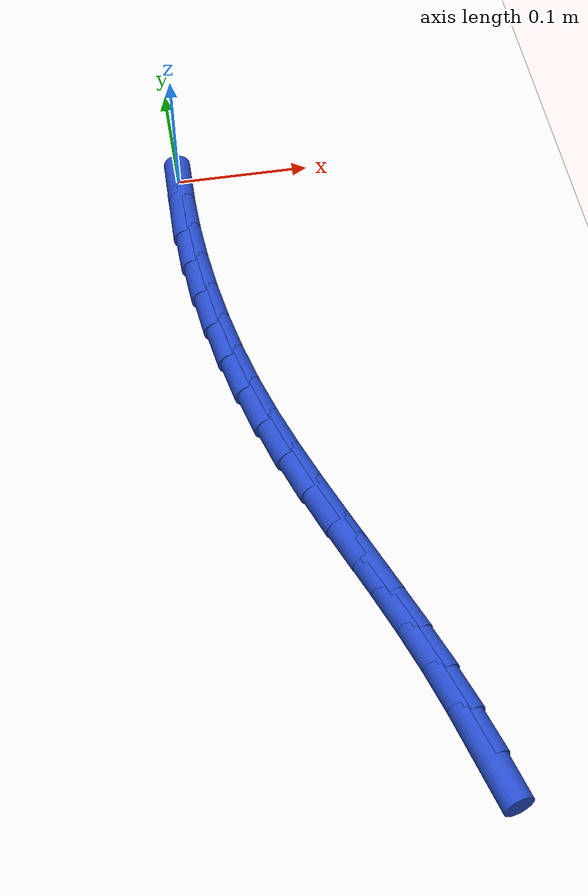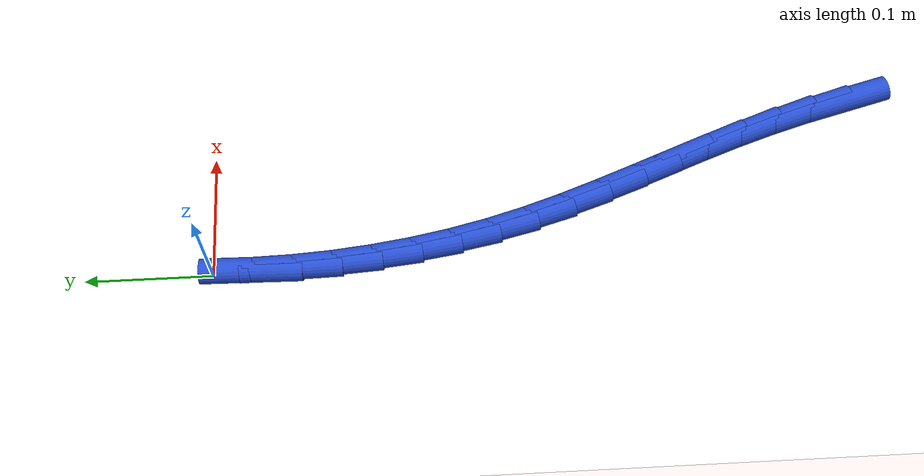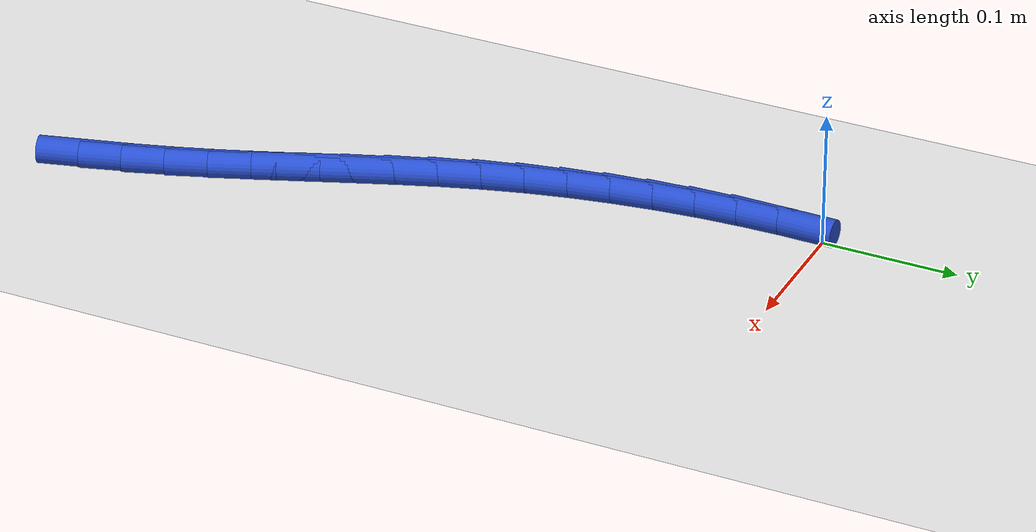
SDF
<sdf version="1.6">
 <world name="default">
  <model name="ground_plane">
   <static>1</static>
   <link name="link">
    <collision name="collision">
     <geometry><plane><normal>0 0 1</normal><size>100 100</size></plane></geometry>
     <surface><friction><ode><mu>100</mu><mu2>50</mu2></ode></friction></surface>
    </collision>
    <visual name="visual">
     <cast_shadows>0</cast_shadows>
     <geometry><plane><normal>0 0 1</normal><size>100 100</size></plane></geometry>
     <material>
      <script><uri>file://media/materials/scripts/gazebo.material</uri><name>Gazebo/WhiteGlow</name></script>
     </material>
    </visual>
   </link>
  </model>
  <model name="line">
   <link name="link_253">
    <pose>0.12334705162346914 -0.5084112088214032 0.01 0 1.57 -1.3091546601147452</pose>
    <collision name="collision">
     <geometry><cylinder><radius>0.01</radius><length>0.08</length></cylinder></geometry>
    </collision>
    <visual name="visual">
     <material>
      <script><name>Gazebo/Blue</name><uri>file://media/materials/scripts/gazebo.material</uri></script>
     </material>
     <geometry><cylinder><radius>0.01</radius><length>0.08</length></cylinder></geometry>
    </visual>
   </link>
   <link name="link_254">
    <pose>0.11533898055691989 -0.4785058146786525 0.01 0 1.57 -1.2775673262315963</pose>
    <collision name="collision">
     <geometry><cylinder><radius>0.01</radius><length>0.08</length></cylinder></geometry>
    </collision>
    <visual name="visual">
     <material>
      <script><name>Gazebo/Blue</name><uri>file://media/materials/scripts/gazebo.material</uri></script>
     </material>
     <geometry><cylinder><radius>0.01</radius><length>0.08</length></cylinder></geometry>
    </visual>
   </link>
   <link name="link_255">
    <pose>0.10640294376261726 -0.4489096967967634 0.01 0 1.57 -1.2418665986103716</pose>
    <collision name="collision">
     <geometry><cylinder><radius>0.01</radius><length>0.08</length></cylinder></geometry>
    </collision>
    <visual name="visual">
     <material>
      <script><name>Gazebo/Blue</name><uri>file://media/materials/scripts/gazebo.material</uri></script>
     </material>
     <geometry><cylinder><radius>0.01</radius><length>0.08</length></cylinder></geometry>
    </visual>
   </link>
   <link name="link_256">
    <pose>0.09641931178664676 -0.41966044356850446 0.01 0 1.57 -1.2145570340297007</pose>
    <collision name="collision">
     <geometry><cylinder><radius>0.01</radius><length>0.08</length></cylinder></geometry>
    </collision>
    <visual name="visual">
     <material>
      <script><name>Gazebo/Blue</name><uri>file://media/materials/scripts/gazebo.material</uri></script>
     </material>
     <geometry><cylinder><radius>0.01</radius><length>0.08</length></cylinder></geometry>
    </visual>
   </link>
   <link name="link_257">
    <pose>0.08563234492630842 -0.3906722118253697 0.01 0 1.57 -1.1987965378414687</pose>
    <collision name="collision">
     <geometry><cylinder><radius>0.01</radius><length>0.08</length></cylinder></geometry>
    </collision>
    <visual name="visual">
     <material>
      <script><name>Gazebo/Blue</name><uri>file://media/materials/scripts/gazebo.material</uri></script>
     </material>
     <geometry><cylinder><radius>0.01</radius><length>0.08</length></cylinder></geometry>
    </visual>
   </link>
   <link name="link_258">
    <pose>0.07437830698255078 -0.3618279507705537 0.01 0 1.57 -1.1945478142017014</pose>
    <collision name="collision">
     <geometry><cylinder><radius>0.01</radius><length>0.08</length></cylinder></geometry>
    </collision>
    <visual name="visual">
     <material>
      <script><name>Gazebo/Blue</name><uri>file://media/materials/scripts/gazebo.material</uri></script>
     </material>
     <geometry><cylinder><radius>0.01</radius><length>0.08</length></cylinder></geometry>
    </visual>
   </link>
   <link name="link_259">
    <pose>0.06299346176114685 -0.3330106096056173 0.01 0 1.57 -1.201781625141138</pose>
    <collision name="collision">
     <geometry><cylinder><radius>0.01</radius><length>0.08</length></cylinder></geometry>
    </collision>
    <visual name="visual">
     <material>
      <script><name>Gazebo/Blue</name><uri>file://media/materials/scripts/gazebo.material</uri></script>
     </material>
     <geometry><cylinder><radius>0.01</radius><length>0.08</length></cylinder></geometry>
    </visual>
   </link>
   <link name="link_260">
    <pose>0.0518140730678683 -0.30410313753211804 0.01 0 1.57 -1.2204935750789117</pose>
    <collision name="collision">
     <geometry><cylinder><radius>0.01</radius><length>0.08</length></cylinder></geometry>
    </collision>
    <visual name="visual">
     <material>
      <script><name>Gazebo/Blue</name><uri>file://media/materials/scripts/gazebo.material</uri></script>
     </material>
     <geometry><cylinder><radius>0.01</radius><length>0.08</length></cylinder></geometry>
    </visual>
   </link>
   <link name="link_261">
    <pose>0.04117640470848815 -0.27498848375161705 0.01 0 1.57 -1.2506754567879914</pose>
    <collision name="collision">
     <geometry><cylinder><radius>0.01</radius><length>0.08</length></cylinder></geometry>
    </collision>
    <visual name="visual">
     <material>
      <script><name>Gazebo/Blue</name><uri>file://media/materials/scripts/gazebo.material</uri></script>
     </material>
     <geometry><cylinder><radius>0.01</radius><length>0.08</length></cylinder></geometry>
    </visual>
   </link>
   <link name="link_262">
    <pose>0.031416720488778145 -0.24554959746567187 0.01 0 1.57 -1.2919714185499185</pose>
    <collision name="collision">
     <geometry><cylinder><radius>0.01</radius><length>0.08</length></cylinder></geometry>
    </collision>
    <visual name="visual">
     <material>
      <script><name>Gazebo/Blue</name><uri>file://media/materials/scripts/gazebo.material</uri></script>
     </material>
     <geometry><cylinder><radius>0.01</radius><length>0.08</length></cylinder></geometry>
    </visual>
   </link>
   <link name="link_263">
    <pose>0.022863867003554934 -0.21567402507855057 0.01 0 1.57 -1.3379677412011557</pose>
    <collision name="collision">
     <geometry><cylinder><radius>0.01</radius><length>0.08</length></cylinder></geometry>
    </collision>
    <visual name="visual">
     <material>
      <script><name>Gazebo/Blue</name><uri>file://media/materials/scripts/gazebo.material</uri></script>
     </material>
     <geometry><cylinder><radius>0.01</radius><length>0.08</length></cylinder></geometry>
    </visual>
   </link>
   <link name="link_264">
    <pose>0.015674580829063086 -0.18535598714036022 0.01 0 1.57 -1.382508345588468</pose>
    <collision name="collision">
     <geometry><cylinder><radius>0.01</radius><length>0.08</length></cylinder></geometry>
    </collision>
    <visual name="visual">
     <material>
      <script><name>Gazebo/Blue</name><uri>file://media/materials/scripts/gazebo.material</uri></script>
     </material>
     <geometry><cylinder><radius>0.01</radius><length>0.08</length></cylinder></geometry>
    </visual>
   </link>
   <link name="link_265">
    <pose>0.00983264309267221 -0.15469690234650774 0.01 0 1.57 -1.425571256223331</pose>
    <collision name="collision">
     <geometry><cylinder><radius>0.01</radius><length>0.08</length></cylinder></geometry>
    </collision>
    <visual name="visual">
     <material>
      <script><name>Gazebo/Blue</name><uri>file://media/materials/scripts/gazebo.material</uri></script>
     </material>
     <geometry><cylinder><radius>0.01</radius><length>0.08</length></cylinder></geometry>
    </visual>
   </link>
   <link name="link_266">
    <pose>0.0053142486234611175 -0.1238028913957827 0.01 0 1.57 -1.4674149488983887</pose>
    <collision name="collision">
     <geometry><cylinder><radius>0.01</radius><length>0.08</length></cylinder></geometry>
    </collision>
    <visual name="visual">
     <material>
      <script><name>Gazebo/Blue</name><uri>file://media/materials/scripts/gazebo.material</uri></script>
     </material>
     <geometry><cylinder><radius>0.01</radius><length>0.08</length></cylinder></geometry>
    </visual>
   </link>
   <link name="link_267">
    <pose>0.0020955922505092642 -0.0927800749869785 0.01 0 1.57 -1.5083011658313896</pose>
    <collision name="collision">
     <geometry><cylinder><radius>0.01</radius><length>0.08</length></cylinder></geometry>
    </collision>
    <visual name="visual">
     <material>
      <script><name>Gazebo/Blue</name><uri>file://media/materials/scripts/gazebo.material</uri></script>
     </material>
     <geometry><cylinder><radius>0.01</radius><length>0.08</length></cylinder></geometry>
    </visual>
   </link>
   <link name="link_268">
    <pose>0.00015286880289567054 -0.061734573818885814 0.01 0 1.57 -1.548495449903925</pose>
    <collision name="collision">
     <geometry><cylinder><radius>0.01</radius><length>0.08</length></cylinder></geometry>
    </collision>
    <visual name="visual">
     <material>
      <script><name>Gazebo/Blue</name><uri>file://media/materials/scripts/gazebo.material</uri></script>
     </material>
     <geometry><cylinder><radius>0.01</radius><length>0.08</length></cylinder></geometry>
    </visual>
   </link>
   <link name="link_269">
    <pose>-0.0005377268903004875 -0.030772508590295195 0.01 0 1.57 1.5533238426410583</pose>
    <collision name="collision">
     <geometry><cylinder><radius>0.01</radius><length>0.08</length></cylinder></geometry>
    </collision>
    <visual name="visual">
     <material>
      <script><name>Gazebo/Blue</name><uri>file://media/materials/scripts/gazebo.material</uri></script>
     </material>
     <geometry><cylinder><radius>0.01</radius><length>0.08</length></cylinder></geometry>
    </visual>
   </link>
  </model>
 </world>
</sdf>
